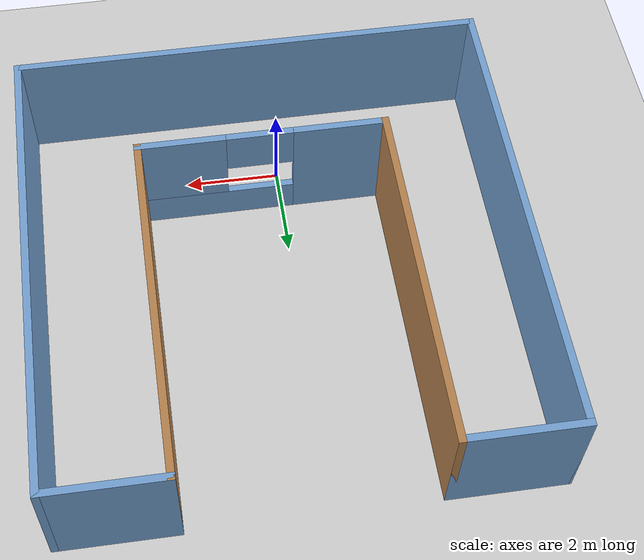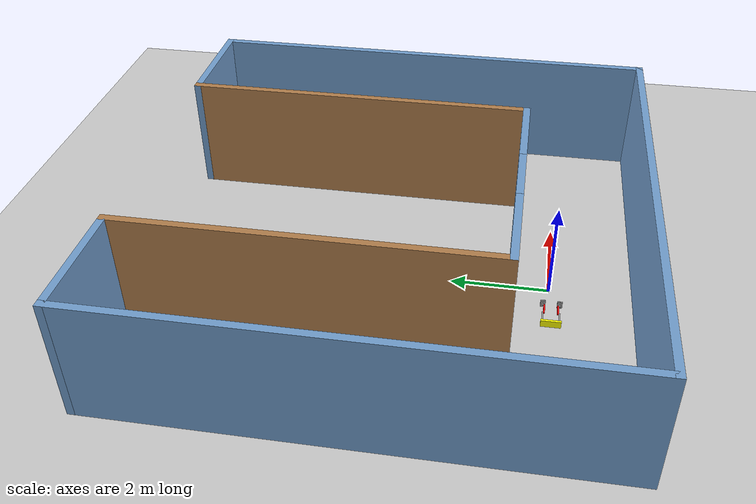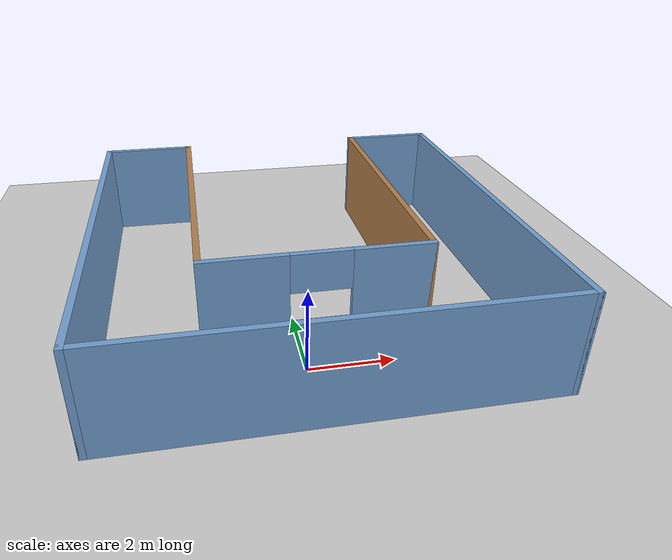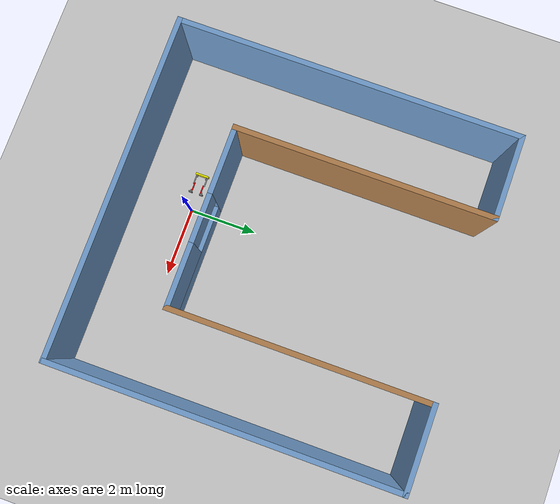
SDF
<sdf version="1.6">
 <world name="default">
  <model name="ground_plane">
   <static>1</static>
   <link name="link">
    <collision name="collision">
     <geometry><plane><normal>0 0 1</normal><size>100 100</size></plane></geometry>
     <surface><friction><ode><mu>100</mu><mu2>50</mu2></ode></friction></surface>
    </collision>
    <visual name="visual">
     <cast_shadows>0</cast_shadows>
     <geometry><plane><normal>0 0 1</normal><size>100 100</size></plane></geometry>
     <material>
      <script><uri>file://media/materials/scripts/gazebo.material</uri><name>Gazebo/Grey</name></script>
     </material>
    </visual>
   </link>
  </model>
  <model name="building">
   <pose>0.39261 3.19497 0 0 -0 0</pose>
   <link name="Wall_39">
    <collision name="Wall_39_Collision">
     <geometry><box><size>10 0.15 2.5</size></box></geometry>
     <pose>0 0 1.25 0 -0 0</pose>
    </collision>
    <visual name="Wall_39_Visual">
     <pose>0 0 1.25 0 -0 0</pose>
     <geometry><box><size>10 0.15 2.5</size></box></geometry>
     <material>
      <script><uri>file://media/materials/scripts/gazebo.material</uri><name>Gazebo/Grey</name></script>
      <ambient>0.447059 0.623529 0.811765 1</ambient>
     </material>
     <meta><layer>0</layer></meta>
    </visual>
    <pose>-4.925 0 0 0 -0 -1.5708</pose>
   </link>
   <link name="Wall_40">
    <collision name="Wall_40_Collision">
     <geometry><box><size>10 0.15 2.5</size></box></geometry>
     <pose>0 0 1.25 0 -0 0</pose>
    </collision>
    <visual name="Wall_40_Visual">
     <pose>0 0 1.25 0 -0 0</pose>
     <geometry><box><size>10 0.15 2.5</size></box></geometry>
     <material>
      <script><uri>file://media/materials/scripts/gazebo.material</uri><name>Gazebo/Grey</name></script>
      <ambient>0.447059 0.623529 0.811765 1</ambient>
     </material>
     <meta><layer>0</layer></meta>
    </visual>
    <pose>-0 -4.925 0 0 -0 0</pose>
   </link>
   <link name="Wall_41">
    <collision name="Wall_41_Collision">
     <geometry><box><size>10 0.15 2.5</size></box></geometry>
     <pose>0 0 1.25 0 -0 0</pose>
    </collision>
    <visual name="Wall_41_Visual">
     <pose>0 0 1.25 0 -0 0</pose>
     <geometry><box><size>10 0.15 2.5</size></box></geometry>
     <material>
      <script><uri>file://media/materials/scripts/gazebo.material</uri><name>Gazebo/Grey</name></script>
      <ambient>0.447059 0.623529 0.811765 1</ambient>
     </material>
     <meta><layer>0</layer></meta>
    </visual>
    <pose>4.925 0 0 0 -0 1.5708</pose>
   </link>
   <link name="Wall_42">
    <collision name="Wall_42_Collision">
     <geometry><box><size>2.5 0.15 2.5</size></box></geometry>
     <pose>0 0 1.25 0 -0 0</pose>
    </collision>
    <visual name="Wall_42_Visual">
     <pose>0 0 1.25 0 -0 0</pose>
     <geometry><box><size>2.5 0.15 2.5</size></box></geometry>
     <material>
      <script><uri>file://media/materials/scripts/gazebo.material</uri><name>Gazebo/Grey</name></script>
      <ambient>0.447059 0.623529 0.811765 1</ambient>
     </material>
     <meta><layer>0</layer></meta>
    </visual>
    <pose>3.75 4.925 0 0 -0 3.14159</pose>
   </link>
   <link name="Wall_43">
    <collision name="Wall_43_Collision">
     <geometry><box><size>7.5 0.15 2.5</size></box></geometry>
     <pose>0 0 1.25 0 -0 0</pose>
    </collision>
    <visual name="Wall_43_Visual">
     <pose>0 0 1.25 0 -0 0</pose>
     <geometry><box><size>7.5 0.15 2.5</size></box></geometry>
     <material>
      <script><uri>file://media/materials/scripts/gazebo.material</uri><name>Gazebo/Wood</name></script>
      <ambient>1 1 1 1</ambient>
     </material>
     <meta><layer>0</layer></meta>
    </visual>
    <pose>2.575 1.25 0 0 -0 -1.5708</pose>
   </link>
   <link name="Wall_45">
    <collision name="Wall_45_Collision">
     <geometry><box><size>2.5 0.15 2.5</size></box></geometry>
     <pose>0 0 1.25 0 -0 0</pose>
    </collision>
    <visual name="Wall_45_Visual">
     <pose>0 0 1.25 0 -0 0</pose>
     <geometry><box><size>2.5 0.15 2.5</size></box></geometry>
     <material>
      <script><uri>file://media/materials/scripts/gazebo.material</uri><name>Gazebo/Grey</name></script>
      <ambient>0.447059 0.623529 0.811765 1</ambient>
     </material>
     <meta><layer>0</layer></meta>
    </visual>
    <pose>-3.75 4.925 0 0 -0 0</pose>
   </link>
   <link name="Wall_46">
    <collision name="Wall_46_Collision">
     <geometry><box><size>7.5 0.15 2.5</size></box></geometry>
     <pose>0 0 1.25 0 -0 0</pose>
    </collision>
    <visual name="Wall_46_Visual">
     <pose>0 0 1.25 0 -0 0</pose>
     <geometry><box><size>7.5 0.15 2.5</size></box></geometry>
     <material>
      <script><uri>file://media/materials/scripts/gazebo.material</uri><name>Gazebo/Wood</name></script>
      <ambient>1 1 1 1</ambient>
     </material>
     <meta><layer>0</layer></meta>
    </visual>
    <pose>-2.575 1.25 0 0 -0 -1.5708</pose>
   </link>
   <link name="Wall_47">
    <pose>-0 -2.425 0 0 -0 0</pose>
    <visual name="Wall_47_Visual_0">
     <pose>-1.64824 0 1.25 0 -0 0</pose>
     <geometry><box><size>2.00351 0.15 2.5</size></box></geometry>
     <material>
      <script><uri>file://media/materials/scripts/gazebo.material</uri><name>Gazebo/Grey</name></script>
      <ambient>0.447059 0.623529 0.811765 1</ambient>
     </material>
     <meta><layer>0</layer></meta>
    </visual>
    <collision name="Wall_47_Collision_0">
     <geometry><box><size>2.00351 0.15 2.5</size></box></geometry>
     <pose>-1.64824 0 1.25 0 -0 0</pose>
    </collision>
    <visual name="Wall_47_Visual_1">
     <pose>1.00176 0 0.375 0 -0 0</pose>
     <geometry><box><size>3.29649 0.15 0.75</size></box></geometry>
     <material>
      <script><uri>file://media/materials/scripts/gazebo.material</uri><name>Gazebo/Grey</name></script>
      <ambient>0.447059 0.623529 0.811765 1</ambient>
     </material>
     <meta><layer>0</layer></meta>
    </visual>
    <collision name="Wall_47_Collision_1">
     <geometry><box><size>3.29649 0.15 0.75</size></box></geometry>
     <pose>1.00176 0 0.375 0 -0 0</pose>
    </collision>
    <visual name="Wall_47_Visual_2">
     <pose>1.70212 0 1.625 0 -0 0</pose>
     <geometry><box><size>1.89577 0.15 1.75</size></box></geometry>
     <material>
      <script><uri>file://media/materials/scripts/gazebo.material</uri><name>Gazebo/Grey</name></script>
      <ambient>0.447059 0.623529 0.811765 1</ambient>
     </material>
     <meta><layer>0</layer></meta>
    </visual>
    <collision name="Wall_47_Collision_2">
     <geometry><box><size>1.89577 0.15 1.75</size></box></geometry>
     <pose>1.70212 0 1.625 0 -0 0</pose>
    </collision>
    <visual name="Wall_47_Visual_3">
     <pose>0.053871 0 2.025 0 -0 0</pose>
     <geometry><box><size>1.40072 0.15 0.95</size></box></geometry>
     <material>
      <script><uri>file://media/materials/scripts/gazebo.material</uri><name>Gazebo/Grey</name></script>
      <ambient>0.447059 0.623529 0.811765 1</ambient>
     </material>
     <meta><layer>0</layer></meta>
    </visual>
    <collision name="Wall_47_Collision_3">
     <geometry><box><size>1.40072 0.15 0.95</size></box></geometry>
     <pose>0.053871 0 2.025 0 -0 0</pose>
    </collision>
   </link>
   <static>1</static>
  </model>
  <model name="HumanoidRobot_0">
   <link name="link_1">
    <inertial>
     <mass>1</mass>
     <inertia>
      <ixx>0.166667</ixx>
      <ixy>0</ixy>
      <ixz>0</ixz>
      <iyy>0.166667</iyy>
      <iyz>0</iyz>
      <izz>0.166667</izz>
     </inertia>
    </inertial>
    <pose>0 0 0.585 0 -0 0</pose>
    <self_collide>1</self_collide>
    <visual name="ModelPreview_0::link_1::visual_2">
     <pose>0 -0.135 -0.055 0 -0 0</pose>
     <geometry><box><size>0.03 0.03 0.06</size></box></geometry>
     <material>
      <lighting>1</lighting>
      <script><uri>file://media/materials/scripts/gazebo.material</uri><name>Gazebo/Grey</name></script>
      <shader type="vertex"><normal_map>__default__</normal_map></shader>
      <ambient>0.3 0.3 0.3 1</ambient>
      <diffuse>0.7 0.7 0.7 1</diffuse>
      <specular>0.01 0.01 0.01 1</specular>
      <emissive>0 0 0 1</emissive>
     </material>
    </visual>
    <visual name="ModelPreview_0::link_1::visual_1">
     <pose>0 0.135 -0.055 0 -0 0</pose>
     <geometry><box><size>0.03 0.03 0.06</size></box></geometry>
     <material>
      <lighting>1</lighting>
      <script><uri>file://media/materials/scripts/gazebo.material</uri><name>Gazebo/Grey</name></script>
      <shader type="vertex"><normal_map>__default__</normal_map></shader>
      <ambient>0.3 0.3 0.3 1</ambient>
      <diffuse>0.7 0.7 0.7 1</diffuse>
      <specular>0.01 0.01 0.01 1</specular>
      <emissive>0 0 0 1</emissive>
     </material>
    </visual>
    <visual name="visual">
     <geometry><box><size>0.15 0.4 0.05</size></box></geometry>
     <material>
      <lighting>1</lighting>
      <script><uri>file://media/materials/scripts/gazebo.material</uri><name>Gazebo/Grey</name></script>
      <shader type="vertex"><normal_map>__default__</normal_map></shader>
      <ambient>1 1 0 1</ambient>
      <diffuse>0.7 0.7 0.7 1</diffuse>
      <specular>0.01 0.01 0.01 1</specular>
      <emissive>0 0 0 1</emissive>
     </material>
    </visual>
    <collision name="collision">
     <geometry><box><size>0.15 0.4 0.05</size></box></geometry>
     <surface>
      <friction>
       <ode><mu>1</mu><mu2>1</mu2><fdir1>0 0 0</fdir1><slip1>0</slip1><slip2>0</slip2></ode>
       <torsional>
        <coefficient>1</coefficient>
        <patch_radius>0</patch_radius>
        <surface_radius>0</surface_radius>
        <use_patch_radius>1</use_patch_radius>
        <ode><slip>0</slip></ode>
       </torsional>
      </friction>
      <bounce><restitution_coefficient>0</restitution_coefficient><threshold>1e+06</threshold></bounce>
      <contact>
       <collide_without_contact>0</collide_without_contact>
       <collide_without_contact_bitmask>1</collide_without_contact_bitmask>
       <collide_bitmask>1</collide_bitmask>
       <ode>
        <soft_cfm>0</soft_cfm>
        <soft_erp>0.2</soft_erp>
        <kp>1e+13</kp>
        <kd>1</kd>
        <max_vel>0.01</max_vel>
        <min_depth>0</min_depth>
       </ode>
       <bullet>
        <split_impulse>1</split_impulse>
        <split_impulse_penetration_threshold>-0.01</split_impulse_penetration_threshold>
        <soft_cfm>0</soft_cfm>
        <soft_erp>0.2</soft_erp>
        <kp>1e+13</kp>
        <kd>1</kd>
       </bullet>
      </contact>
     </surface>
    </collision>
    <collision name="collision_2">
     <pose>0 -0.135 -0.055 0 -0 0</pose>
     <geometry><box><size>0.03 0.03 0.06</size></box></geometry>
     <surface>
      <friction>
       <ode><mu>1</mu><mu2>1</mu2><fdir1>0 0 0</fdir1><slip1>0</slip1><slip2>0</slip2></ode>
       <torsional>
        <coefficient>1</coefficient>
        <patch_radius>0</patch_radius>
        <surface_radius>0</surface_radius>
        <use_patch_radius>1</use_patch_radius>
        <ode><slip>0</slip></ode>
       </torsional>
      </friction>
      <bounce><restitution_coefficient>0</restitution_coefficient><threshold>1e+06</threshold></bounce>
      <contact>
       <collide_without_contact>0</collide_without_contact>
       <collide_without_contact_bitmask>1</collide_without_contact_bitmask>
       <collide_bitmask>1</collide_bitmask>
       <ode>
        <soft_cfm>0</soft_cfm>
        <soft_erp>0.2</soft_erp>
        <kp>1e+13</kp>
        <kd>1</kd>
        <max_vel>0.01</max_vel>
        <min_depth>0</min_depth>
       </ode>
       <bullet>
        <split_impulse>1</split_impulse>
        <split_impulse_penetration_threshold>-0.01</split_impulse_penetration_threshold>
        <soft_cfm>0</soft_cfm>
        <soft_erp>0.2</soft_erp>
        <kp>1e+13</kp>
        <kd>1</kd>
       </bullet>
      </contact>
     </surface>
    </collision>
    <collision name="collision_1">
     <pose>0 0.135 -0.055 0 -0 0</pose>
     <geometry><box><size>0.03 0.03 0.06</size></box></geometry>
     <surface>
      <friction>
       <ode><mu>1</mu><mu2>1</mu2><fdir1>0 0 0</fdir1><slip1>0</slip1><slip2>0</slip2></ode>
       <torsional>
        <coefficient>1</coefficient>
        <patch_radius>0</patch_radius>
        <surface_radius>0</surface_radius>
        <use_patch_radius>1</use_patch_radius>
        <ode><slip>0</slip></ode>
       </torsional>
      </friction>
      <bounce><restitution_coefficient>0</restitution_coefficient><threshold>1e+06</threshold></bounce>
      <contact>
       <collide_without_contact>0</collide_without_contact>
       <collide_without_contact_bitmask>1</collide_without_contact_bitmask>
       <collide_bitmask>1</collide_bitmask>
       <ode>
        <soft_cfm>0</soft_cfm>
        <soft_erp>0.2</soft_erp>
        <kp>1e+13</kp>
        <kd>1</kd>
        <max_vel>0.01</max_vel>
        <min_depth>0</min_depth>
       </ode>
       <bullet>
        <split_impulse>1</split_impulse>
        <split_impulse_penetration_threshold>-0.01</split_impulse_penetration_threshold>
        <soft_cfm>0</soft_cfm>
        <soft_erp>0.2</soft_erp>
        <kp>1e+13</kp>
        <kd>1</kd>
       </bullet>
      </contact>
     </surface>
    </collision>
   </link>
   <link name="link_0">
    <inertial>
     <mass>1</mass>
     <inertia>
      <ixx>0.166667</ixx>
      <ixy>0</ixy>
      <ixz>0</ixz>
      <iyy>0.166667</iyy>
      <iyz>0</iyz>
      <izz>0.166667</izz>
     </inertia>
    </inertial>
    <pose>0 -0.165 0.015 0 -0 0</pose>
    <self_collide>1</self_collide>
    <visual name="ModelPreview_1::link_0::visual_1">
     <pose>0 0 0.045 0 -0 0</pose>
     <geometry><box><size>0.03 0.03 0.06</size></box></geometry>
     <material>
      <lighting>1</lighting>
      <script><uri>file://media/materials/scripts/gazebo.material</uri><name>Gazebo/Grey</name></script>
      <shader type="vertex"><normal_map>__default__</normal_map></shader>
      <ambient>0.3 0.3 0.3 1</ambient>
      <diffuse>0.7 0.7 0.7 1</diffuse>
      <specular>0.01 0.01 0.01 1</specular>
      <emissive>0 0 0 1</emissive>
     </material>
    </visual>
    <visual name="visual">
     <geometry><box><size>0.15 0.1 0.03</size></box></geometry>
     <material>
      <lighting>1</lighting>
      <script><uri>file://media/materials/scripts/gazebo.material</uri><name>Gazebo/Grey</name></script>
      <shader type="vertex"><normal_map>__default__</normal_map></shader>
      <ambient>0.3 0.3 0.3 1</ambient>
      <diffuse>0.7 0.7 0.7 1</diffuse>
      <specular>0.01 0.01 0.01 1</specular>
      <emissive>0 0 0 1</emissive>
     </material>
    </visual>
    <collision name="collision_1">
     <pose>0 0 0.045 0 -0 0</pose>
     <geometry><box><size>0.03 0.03 0.06</size></box></geometry>
     <surface>
      <friction>
       <ode><mu>1</mu><mu2>1</mu2><fdir1>0 0 0</fdir1><slip1>0</slip1><slip2>0</slip2></ode>
       <torsional>
        <coefficient>1</coefficient>
        <patch_radius>0</patch_radius>
        <surface_radius>0</surface_radius>
        <use_patch_radius>1</use_patch_radius>
        <ode><slip>0</slip></ode>
       </torsional>
      </friction>
      <bounce><restitution_coefficient>0</restitution_coefficient><threshold>1e+06</threshold></bounce>
      <contact>
       <collide_without_contact>0</collide_without_contact>
       <collide_without_contact_bitmask>1</collide_without_contact_bitmask>
       <collide_bitmask>1</collide_bitmask>
       <ode>
        <soft_cfm>0</soft_cfm>
        <soft_erp>0.2</soft_erp>
        <kp>1e+13</kp>
        <kd>1</kd>
        <max_vel>0.01</max_vel>
        <min_depth>0</min_depth>
       </ode>
       <bullet>
        <split_impulse>1</split_impulse>
        <split_impulse_penetration_threshold>-0.01</split_impulse_penetration_threshold>
        <soft_cfm>0</soft_cfm>
        <soft_erp>0.2</soft_erp>
        <kp>1e+13</kp>
        <kd>1</kd>
       </bullet>
      </contact>
     </surface>
    </collision>
    <collision name="collision">
     <geometry><box><size>0.15 0.1 0.03</size></box></geometry>
     <surface>
      <friction>
       <ode><mu>1</mu><mu2>1</mu2><fdir1>0 0 0</fdir1><slip1>0</slip1><slip2>0</slip2></ode>
       <torsional>
        <coefficient>1</coefficient>
        <patch_radius>0</patch_radius>
        <surface_radius>0</surface_radius>
        <use_patch_radius>1</use_patch_radius>
        <ode><slip>0</slip></ode>
       </torsional>
      </friction>
      <bounce><restitution_coefficient>0</restitution_coefficient><threshold>1e+06</threshold></bounce>
      <contact>
       <collide_without_contact>0</collide_without_contact>
       <collide_without_contact_bitmask>1</collide_without_contact_bitmask>
       <collide_bitmask>1</collide_bitmask>
       <ode>
        <soft_cfm>0</soft_cfm>
        <soft_erp>0.2</soft_erp>
        <kp>1e+13</kp>
        <kd>1</kd>
        <max_vel>0.01</max_vel>
        <min_depth>0</min_depth>
       </ode>
       <bullet>
        <split_impulse>1</split_impulse>
        <split_impulse_penetration_threshold>-0.01</split_impulse_penetration_threshold>
        <soft_cfm>0</soft_cfm>
        <soft_erp>0.2</soft_erp>
        <kp>1e+13</kp>
        <kd>1</kd>
       </bullet>
      </contact>
     </surface>
    </collision>
   </link>
   <link name="link_0_clone">
    <inertial>
     <mass>1</mass>
     <inertia>
      <ixx>0.166667</ixx>
      <ixy>0</ixy>
      <ixz>0</ixz>
      <iyy>0.166667</iyy>
      <iyz>0</iyz>
      <izz>0.166667</izz>
     </inertia>
    </inertial>
    <pose>0 0.165 0.015 0 -0 0</pose>
    <self_collide>1</self_collide>
    <visual name="visual">
     <geometry><box><size>0.15 0.1 0.03</size></box></geometry>
     <material>
      <lighting>1</lighting>
      <script><uri>file://media/materials/scripts/gazebo.material</uri><name>Gazebo/Grey</name></script>
      <shader type="vertex"><normal_map>__default__</normal_map></shader>
      <ambient>0.3 0.3 0.3 1</ambient>
      <diffuse>0.7 0.7 0.7 1</diffuse>
      <specular>0.01 0.01 0.01 1</specular>
      <emissive>0 0 0 1</emissive>
     </material>
    </visual>
    <visual name="visual_1">
     <pose>0 0 0.045 0 -0 0</pose>
     <geometry><box><size>0.03 0.03 0.06</size></box></geometry>
     <material>
      <lighting>1</lighting>
      <script><uri>file://media/materials/scripts/gazebo.material</uri><name>Gazebo/Grey</name></script>
      <shader type="vertex"><normal_map>__default__</normal_map></shader>
      <ambient>0.3 0.3 0.3 1</ambient>
      <diffuse>0.7 0.7 0.7 1</diffuse>
      <specular>0.01 0.01 0.01 1</specular>
      <emissive>0 0 0 1</emissive>
     </material>
    </visual>
    <collision name="collision">
     <geometry><box><size>0.15 0.1 0.03</size></box></geometry>
     <surface>
      <friction>
       <ode><mu>1</mu><mu2>1</mu2><fdir1>0 0 0</fdir1><slip1>0</slip1><slip2>0</slip2></ode>
       <torsional>
        <coefficient>1</coefficient>
        <patch_radius>0</patch_radius>
        <surface_radius>0</surface_radius>
        <use_patch_radius>1</use_patch_radius>
        <ode><slip>0</slip></ode>
       </torsional>
      </friction>
      <bounce><restitution_coefficient>0</restitution_coefficient><threshold>1e+06</threshold></bounce>
      <contact>
       <collide_without_contact>0</collide_without_contact>
       <collide_without_contact_bitmask>1</collide_without_contact_bitmask>
       <collide_bitmask>1</collide_bitmask>
       <ode>
        <soft_cfm>0</soft_cfm>
        <soft_erp>0.2</soft_erp>
        <kp>1e+13</kp>
        <kd>1</kd>
        <max_vel>0.01</max_vel>
        <min_depth>0</min_depth>
       </ode>
       <bullet>
        <split_impulse>1</split_impulse>
        <split_impulse_penetration_threshold>-0.01</split_impulse_penetration_threshold>
        <soft_cfm>0</soft_cfm>
        <soft_erp>0.2</soft_erp>
        <kp>1e+13</kp>
        <kd>1</kd>
       </bullet>
      </contact>
     </surface>
    </collision>
    <collision name="collision_1">
     <pose>0 0 0.045 0 -0 0</pose>
     <geometry><box><size>0.03 0.03 0.06</size></box></geometry>
     <surface>
      <friction>
       <ode><mu>1</mu><mu2>1</mu2><fdir1>0 0 0</fdir1><slip1>0</slip1><slip2>0</slip2></ode>
       <torsional>
        <coefficient>1</coefficient>
        <patch_radius>0</patch_radius>
        <surface_radius>0</surface_radius>
        <use_patch_radius>1</use_patch_radius>
        <ode><slip>0</slip></ode>
       </torsional>
      </friction>
      <bounce><restitution_coefficient>0</restitution_coefficient><threshold>1e+06</threshold></bounce>
      <contact>
       <collide_without_contact>0</collide_without_contact>
       <collide_without_contact_bitmask>1</collide_without_contact_bitmask>
       <collide_bitmask>1</collide_bitmask>
       <ode>
        <soft_cfm>0</soft_cfm>
        <soft_erp>0.2</soft_erp>
        <kp>1e+13</kp>
        <kd>1</kd>
        <max_vel>0.01</max_vel>
        <min_depth>0</min_depth>
       </ode>
       <bullet>
        <split_impulse>1</split_impulse>
        <split_impulse_penetration_threshold>-0.01</split_impulse_penetration_threshold>
        <soft_cfm>0</soft_cfm>
        <soft_erp>0.2</soft_erp>
        <kp>1e+13</kp>
        <kd>1</kd>
       </bullet>
      </contact>
     </surface>
    </collision>
   </link>
   <link name="link_2">
    <inertial>
     <mass>1</mass>
     <inertia>
      <ixx>0.166667</ixx>
      <ixy>0</ixy>
      <ixz>0</ixz>
      <iyy>0.166667</iyy>
      <iyz>0</iyz>
      <izz>0.166667</izz>
     </inertia>
    </inertial>
    <pose>0 -0.165 0.405 0 0.023326 0</pose>
    <self_collide>1</self_collide>
    <visual name="visual">
     <geometry><box><size>0.03 0.03 0.25</size></box></geometry>
     <material>
      <lighting>1</lighting>
      <script><uri>file://media/materials/scripts/gazebo.material</uri><name>Gazebo/Grey</name></script>
      <shader type="vertex"><normal_map>__default__</normal_map></shader>
      <ambient>0.3 0.3 0.3 1</ambient>
      <diffuse>0.7 0.7 0.7 1</diffuse>
      <specular>0.01 0.01 0.01 1</specular>
      <emissive>0 0 0 1</emissive>
     </material>
    </visual>
    <collision name="collision">
     <geometry><box><size>0.03 0.03 0.25</size></box></geometry>
     <surface>
      <friction>
       <ode><mu>1</mu><mu2>1</mu2><fdir1>0 0 0</fdir1><slip1>0</slip1><slip2>0</slip2></ode>
       <torsional>
        <coefficient>1</coefficient>
        <patch_radius>0</patch_radius>
        <surface_radius>0</surface_radius>
        <use_patch_radius>1</use_patch_radius>
        <ode><slip>0</slip></ode>
       </torsional>
      </friction>
      <bounce><restitution_coefficient>0</restitution_coefficient><threshold>1e+06</threshold></bounce>
      <contact>
       <collide_without_contact>0</collide_without_contact>
       <collide_without_contact_bitmask>1</collide_without_contact_bitmask>
       <collide_bitmask>1</collide_bitmask>
       <ode>
        <soft_cfm>0</soft_cfm>
        <soft_erp>0.2</soft_erp>
        <kp>1e+13</kp>
        <kd>1</kd>
        <max_vel>0.01</max_vel>
        <min_depth>0</min_depth>
       </ode>
       <bullet>
        <split_impulse>1</split_impulse>
        <split_impulse_penetration_threshold>-0.01</split_impulse_penetration_threshold>
        <soft_cfm>0</soft_cfm>
        <soft_erp>0.2</soft_erp>
        <kp>1e+13</kp>
        <kd>1</kd>
       </bullet>
      </contact>
     </surface>
    </collision>
   </link>
   <link name="link_2_clone">
    <inertial>
     <mass>1</mass>
     <inertia>
      <ixx>0.166667</ixx>
      <ixy>0</ixy>
      <ixz>0</ixz>
      <iyy>0.166667</iyy>
      <iyz>0</iyz>
      <izz>0.166667</izz>
     </inertia>
    </inertial>
    <pose>0 -0.135 0.185 0 0.023326 0</pose>
    <self_collide>1</self_collide>
    <visual name="visual">
     <geometry><box><size>0.03 0.03 0.25</size></box></geometry>
     <material>
      <lighting>1</lighting>
      <script><uri>file://media/materials/scripts/gazebo.material</uri><name>Gazebo/Grey</name></script>
      <shader type="vertex"><normal_map>__default__</normal_map></shader>
      <ambient>1 0 0 1</ambient>
      <diffuse>0.7 0.7 0.7 1</diffuse>
      <specular>0.01 0.01 0.01 1</specular>
      <emissive>0 0 0 1</emissive>
     </material>
    </visual>
    <collision name="collision">
     <geometry><box><size>0.03 0.03 0.25</size></box></geometry>
     <surface>
      <friction>
       <ode><mu>1</mu><mu2>1</mu2><fdir1>0 0 0</fdir1><slip1>0</slip1><slip2>0</slip2></ode>
       <torsional>
        <coefficient>1</coefficient>
        <patch_radius>0</patch_radius>
        <surface_radius>0</surface_radius>
        <use_patch_radius>1</use_patch_radius>
        <ode><slip>0</slip></ode>
       </torsional>
      </friction>
      <bounce><restitution_coefficient>0</restitution_coefficient><threshold>1e+06</threshold></bounce>
      <contact>
       <collide_without_contact>0</collide_without_contact>
       <collide_without_contact_bitmask>1</collide_without_contact_bitmask>
       <collide_bitmask>1</collide_bitmask>
       <ode>
        <soft_cfm>0</soft_cfm>
        <soft_erp>0.2</soft_erp>
        <kp>1e+13</kp>
        <kd>1</kd>
        <max_vel>0.01</max_vel>
        <min_depth>0</min_depth>
       </ode>
       <bullet>
        <split_impulse>1</split_impulse>
        <split_impulse_penetration_threshold>-0.01</split_impulse_penetration_threshold>
        <soft_cfm>0</soft_cfm>
        <soft_erp>0.2</soft_erp>
        <kp>1e+13</kp>
        <kd>1</kd>
       </bullet>
      </contact>
     </surface>
    </collision>
   </link>
   <link name="link_2_clone_0">
    <inertial>
     <mass>1</mass>
     <inertia>
      <ixx>0.166667</ixx>
      <ixy>0</ixy>
      <ixz>0</ixz>
      <iyy>0.166667</iyy>
      <iyz>0</iyz>
      <izz>0.166667</izz>
     </inertia>
    </inertial>
    <pose>0 0.165 0.405 0 0.023326 0</pose>
    <self_collide>1</self_collide>
    <visual name="visual">
     <geometry><box><size>0.03 0.03 0.25</size></box></geometry>
     <material>
      <lighting>1</lighting>
      <script><uri>file://media/materials/scripts/gazebo.material</uri><name>Gazebo/Grey</name></script>
      <shader type="vertex"><normal_map>__default__</normal_map></shader>
      <ambient>0.3 0.3 0.3 1</ambient>
      <diffuse>0.7 0.7 0.7 1</diffuse>
      <specular>0.01 0.01 0.01 1</specular>
      <emissive>0 0 0 1</emissive>
     </material>
    </visual>
    <collision name="collision">
     <geometry><box><size>0.03 0.03 0.25</size></box></geometry>
     <surface>
      <friction>
       <ode><mu>1</mu><mu2>1</mu2><fdir1>0 0 0</fdir1><slip1>0</slip1><slip2>0</slip2></ode>
       <torsional>
        <coefficient>1</coefficient>
        <patch_radius>0</patch_radius>
        <surface_radius>0</surface_radius>
        <use_patch_radius>1</use_patch_radius>
        <ode><slip>0</slip></ode>
       </torsional>
      </friction>
      <bounce><restitution_coefficient>0</restitution_coefficient><threshold>1e+06</threshold></bounce>
      <contact>
       <collide_without_contact>0</collide_without_contact>
       <collide_without_contact_bitmask>1</collide_without_contact_bitmask>
       <collide_bitmask>1</collide_bitmask>
       <ode>
        <soft_cfm>0</soft_cfm>
        <soft_erp>0.2</soft_erp>
        <kp>1e+13</kp>
        <kd>1</kd>
        <max_vel>0.01</max_vel>
        <min_depth>0</min_depth>
       </ode>
       <bullet>
        <split_impulse>1</split_impulse>
        <split_impulse_penetration_threshold>-0.01</split_impulse_penetration_threshold>
        <soft_cfm>0</soft_cfm>
        <soft_erp>0.2</soft_erp>
        <kp>1e+13</kp>
        <kd>1</kd>
       </bullet>
      </contact>
     </surface>
    </collision>
   </link>
   <link name="link_2_clone_1">
    <inertial>
     <mass>1</mass>
     <inertia>
      <ixx>0.166667</ixx>
      <ixy>0</ixy>
      <ixz>0</ixz>
      <iyy>0.166667</iyy>
      <iyz>0</iyz>
      <izz>0.166667</izz>
     </inertia>
    </inertial>
    <pose>0 0.135 0.185 0 0.023326 0</pose>
    <self_collide>1</self_collide>
    <visual name="visual">
     <geometry><box><size>0.03 0.03 0.25</size></box></geometry>
     <material>
      <lighting>1</lighting>
      <script><uri>file://media/materials/scripts/gazebo.material</uri><name>Gazebo/Grey</name></script>
      <shader type="vertex"><normal_map>__default__</normal_map></shader>
      <ambient>1 0 0 1</ambient>
      <diffuse>0.7 0.7 0.7 1</diffuse>
      <specular>0.01 0.01 0.01 1</specular>
      <emissive>0 0 0 1</emissive>
     </material>
    </visual>
    <collision name="collision">
     <geometry><box><size>0.03 0.03 0.25</size></box></geometry>
     <surface>
      <friction>
       <ode><mu>1</mu><mu2>1</mu2><fdir1>0 0 0</fdir1><slip1>0</slip1><slip2>0</slip2></ode>
       <torsional>
        <coefficient>1</coefficient>
        <patch_radius>0</patch_radius>
        <surface_radius>0</surface_radius>
        <use_patch_radius>1</use_patch_radius>
        <ode><slip>0</slip></ode>
       </torsional>
      </friction>
      <bounce><restitution_coefficient>0</restitution_coefficient><threshold>1e+06</threshold></bounce>
      <contact>
       <collide_without_contact>0</collide_without_contact>
       <collide_without_contact_bitmask>1</collide_without_contact_bitmask>
       <collide_bitmask>1</collide_bitmask>
       <ode>
        <soft_cfm>0</soft_cfm>
        <soft_erp>0.2</soft_erp>
        <kp>1e+13</kp>
        <kd>1</kd>
        <max_vel>0.01</max_vel>
        <min_depth>0</min_depth>
       </ode>
       <bullet>
        <split_impulse>1</split_impulse>
        <split_impulse_penetration_threshold>-0.01</split_impulse_penetration_threshold>
        <soft_cfm>0</soft_cfm>
        <soft_erp>0.2</soft_erp>
        <kp>1e+13</kp>
        <kd>1</kd>
       </bullet>
      </contact>
     </surface>
    </collision>
   </link>
   <joint name="link_1_JOINT_1" type="revolute">
    <parent>link_1</parent>
    <child>link_2</child>
    <pose>0 0 0.11 0 -0 0</pose>
    <axis>
     <xyz>0 1 0</xyz>
     <use_parent_model_frame>0</use_parent_model_frame>
     <limit>
      <lower>-1.79769e+308</lower>
      <upper>1.79769e+308</upper>
      <effort>-1</effort>
      <velocity>-1</velocity>
     </limit>
     <dynamics>
      <spring_reference>0</spring_reference>
      <spring_stiffness>0</spring_stiffness>
      <damping>0</damping>
      <friction>0</friction>
     </dynamics>
    </axis>
    <physics>
     <ode><limit><cfm>0</cfm><erp>0.2</erp></limit><suspension><cfm>0</cfm><erp>0.2</erp></suspension></ode>
    </physics>
   </joint>
   <joint name="link_1_JOINT_2" type="revolute">
    <parent>link_1</parent>
    <child>link_2_clone_0</child>
    <pose>0 0 0.11 0 -0 0</pose>
    <axis>
     <xyz>0 1 0</xyz>
     <use_parent_model_frame>0</use_parent_model_frame>
     <limit>
      <lower>-1.79769e+308</lower>
      <upper>1.79769e+308</upper>
      <effort>-1</effort>
      <velocity>-1</velocity>
     </limit>
     <dynamics>
      <spring_reference>0</spring_reference>
      <spring_stiffness>0</spring_stiffness>
      <damping>0</damping>
      <friction>0</friction>
     </dynamics>
    </axis>
    <physics>
     <ode><limit><cfm>0</cfm><erp>0.2</erp></limit><suspension><cfm>0</cfm><erp>0.2</erp></suspension></ode>
    </physics>
   </joint>
   <joint name="link_2_JOINT_0" type="revolute">
    <parent>link_2</parent>
    <child>link_2_clone</child>
    <pose>0 0 0.11 0 -0 0</pose>
    <axis>
     <xyz>0 1 0</xyz>
     <use_parent_model_frame>0</use_parent_model_frame>
     <limit>
      <lower>-1.79769e+308</lower>
      <upper>1.79769e+308</upper>
      <effort>-1</effort>
      <velocity>-1</velocity>
     </limit>
     <dynamics>
      <spring_reference>0</spring_reference>
      <spring_stiffness>0</spring_stiffness>
      <damping>0</damping>
      <friction>0</friction>
     </dynamics>
    </axis>
    <physics>
     <ode><limit><cfm>0</cfm><erp>0.2</erp></limit><suspension><cfm>0</cfm><erp>0.2</erp></suspension></ode>
    </physics>
   </joint>
   <joint name="link_2_clone_0_JOINT_3" type="revolute">
    <parent>link_2_clone_0</parent>
    <child>link_2_clone_1</child>
    <pose>0 0 0.11 0 -0 0</pose>
    <axis>
     <xyz>0 1 0</xyz>
     <use_parent_model_frame>0</use_parent_model_frame>
     <limit>
      <lower>-1.79769e+308</lower>
      <upper>1.79769e+308</upper>
      <effort>-1</effort>
      <velocity>-1</velocity>
     </limit>
     <dynamics>
      <spring_reference>0</spring_reference>
      <spring_stiffness>0</spring_stiffness>
      <damping>0</damping>
      <friction>0</friction>
     </dynamics>
    </axis>
    <physics>
     <ode><limit><cfm>0</cfm><erp>0.2</erp></limit><suspension><cfm>0</cfm><erp>0.2</erp></suspension></ode>
    </physics>
   </joint>
   <joint name="link_2_clone_1_JOINT_4" type="revolute">
    <parent>link_2_clone_1</parent>
    <child>link_0_clone</child>
    <pose>0 0 0.06 0 -0 0</pose>
    <axis>
     <xyz>0 1 0</xyz>
     <use_parent_model_frame>0</use_parent_model_frame>
     <limit>
      <lower>-1.79769e+308</lower>
      <upper>1.79769e+308</upper>
      <effort>-1</effort>
      <velocity>-1</velocity>
     </limit>
     <dynamics>
      <spring_reference>0</spring_reference>
      <spring_stiffness>0</spring_stiffness>
      <damping>0</damping>
      <friction>0</friction>
     </dynamics>
    </axis>
    <physics>
     <ode><limit><cfm>0</cfm><erp>0.2</erp></limit><suspension><cfm>0</cfm><erp>0.2</erp></suspension></ode>
    </physics>
   </joint>
   <joint name="link_2_clone_JOINT_1" type="revolute">
    <parent>link_2_clone</parent>
    <child>link_0</child>
    <pose>0 0 0.06 0 -0 0</pose>
    <axis>
     <xyz>0 1 0</xyz>
     <use_parent_model_frame>0</use_parent_model_frame>
     <limit>
      <lower>-1.79769e+308</lower>
      <upper>1.79769e+308</upper>
      <effort>-1</effort>
      <velocity>-1</velocity>
     </limit>
     <dynamics>
      <spring_reference>0</spring_reference>
      <spring_stiffness>0</spring_stiffness>
      <damping>0</damping>
      <friction>0</friction>
     </dynamics>
    </axis>
    <physics>
     <ode><limit><cfm>0</cfm><erp>0.2</erp></limit><suspension><cfm>0</cfm><erp>0.2</erp></suspension></ode>
    </physics>
   </joint>
   <static>0</static>
   <pose>-0.505768 -0.050918 0.114991 -3.14159 -1.56275 -3.14091</pose>
  </model>
 </world>
</sdf>
